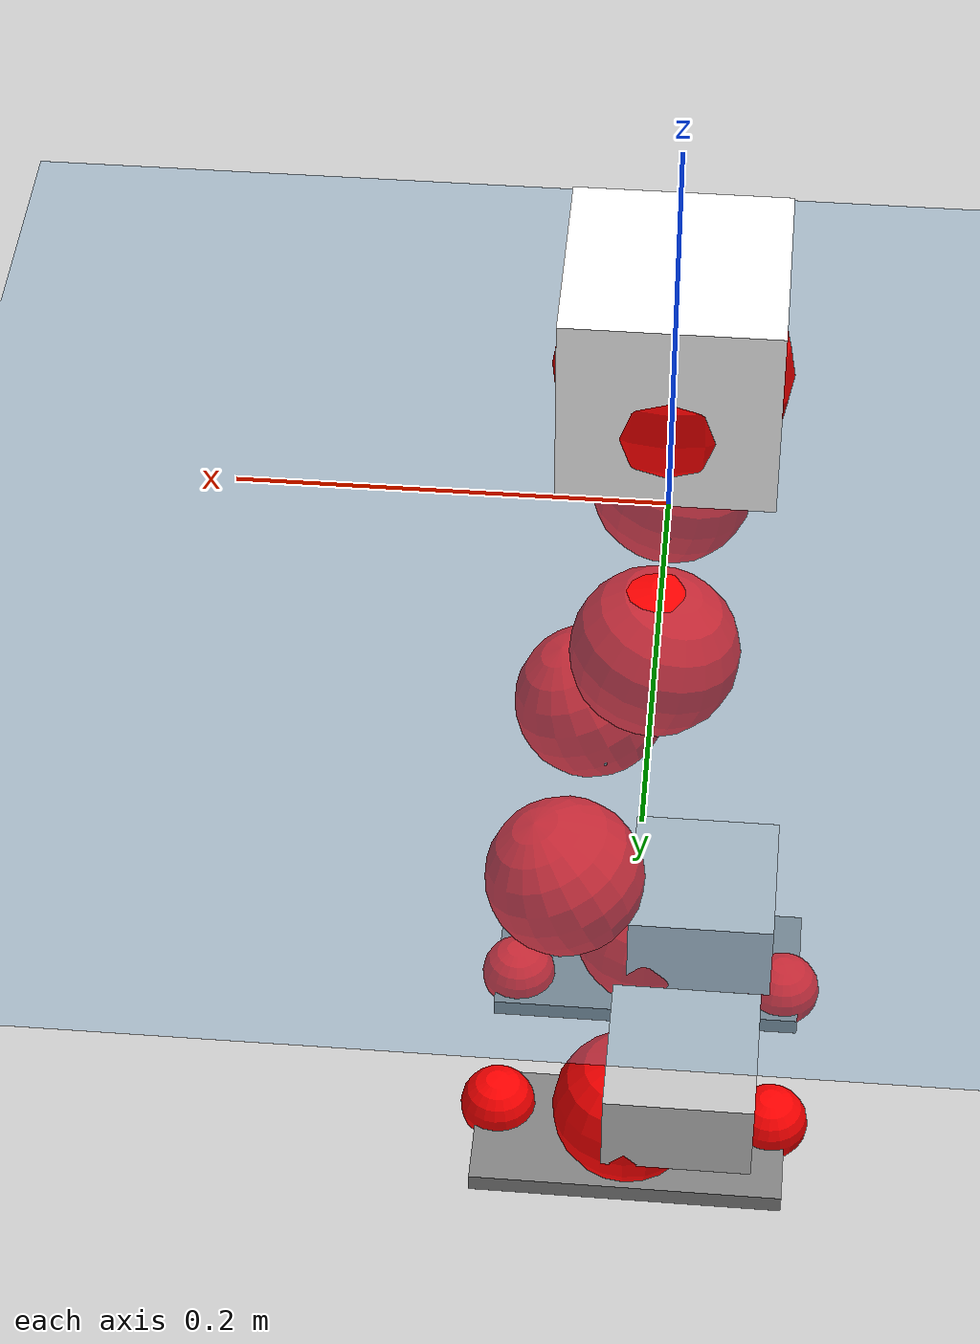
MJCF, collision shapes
<mujoco model="pi_12dof_release_v1">
  <compiler angle="radian" assetdir="assets" balanceinertia="true" inertiafromgeom="false"/>

  <option timestep="0.005" density="1.2" viscosity="2e-05"/>

  <size nkey="1"/>

  <visual>
    <quality shadowsize="8192"/>
    <map shadowclip="0.5"/>
  </visual>

  <default>
    <default class="/">
      <joint armature="0.01" damping="0.01" frictionloss="0.01"/>
      <geom contype="0" conaffinity="0" group="1" solref="-1000 -80"/>
      <site size="0.01 0.005 0.005" group="5"/>
      <general forcelimited="true" biastype="affine" gainprm="20" biasprm="0 -20 -0.5"/>
      <default class="foot">
        <geom size="0.0845 0.036 0.005" type="box" condim="6" group="4" priority="1" friction="0.9 0.2 0.2" solimp="0.015 1 0.005"/>
      </default>
      <default class="reward_collision_sphere">
        <geom group="5" rgba="1 0 0 1"/>
      </default>
    </default>
  </default>

  <asset>
    <texture type="skybox" colorspace="auto" name="//unnamed_texture_0" builtin="gradient" rgb1="0.95 0.95 0.95" rgb2="0.95 0.95 0.95" width="100" height="600"/>
    <texture type="2d" colorspace="auto" name="texplane" builtin="checker" rgb1="0.345 0.575 0.748" rgb2="0.345 0.575 0.748" markrgb="1 1 1" width="512" height="512"/>
    <material name="MatPlane" class="/" texture="texplane" texuniform="true" texrepeat="2 2" specular="0.9"/>
    <mesh name="baselink_1" class="/" file="baselink_1.STL"/>
    <mesh name="r_hip_pitch_link" class="/" file="r_hip_pitch_link.STL"/>
    <mesh name="r_hip_roll_link" class="/" file="r_hip_roll_link.STL"/>
    <mesh name="r_thigh_link" class="/" file="r_thigh_link.STL"/>
    <mesh name="r_calf_link" class="/" file="r_calf_link.STL"/>
    <mesh name="r_ankle_pitch_link" class="/" file="r_ankle_pitch_link.STL"/>
    <mesh name="r_ankle_roll_link" class="/" file="r_ankle_roll_link.STL"/>
    <mesh name="l_hip_pitch_link" class="/" file="l_hip_pitch_link.STL"/>
    <mesh name="l_hip_roll_link" class="/" file="l_hip_roll_link.STL"/>
    <mesh name="l_thigh_link" class="/" file="l_thigh_link.STL"/>
    <mesh name="l_calf_link" class="/" file="l_calf_link.STL"/>
    <mesh name="l_ankle_pitch_link" class="/" file="l_ankle_pitch_link.STL"/>
    <mesh name="l_ankle_roll_link" class="/" file="l_ankle_roll_link.STL"/>
  </asset>

  <worldbody>
    <geom name="floor" class="/" size="100 100 0.125" type="plane" group="0" material="MatPlane"/>
    <light name="toplight_shadow" class="/" pos="0 0 5" dir="0.0990148 0.0990148 -0.990148" type="directional" ambient="0.04 0.04 0.04" diffuse="0.55 0.55 0.55" specular="0.12 0.12 0.12"/>
    <light name="toplight_fill" class="/" pos="0 0 5" dir="0.0990148 0.0990148 -0.990148" type="directional" castshadow="false" ambient="0.04 0.04 0.04" diffuse="0.3 0.3 0.3" specular="0.08 0.08 0.08"/>
    <body name="trunk" pos="0.000196949 0.000369171 0.000592732" quat="1 -8.28373e-05 8.70808e-05 0.000123292">
      <inertial pos="0.00328008 -0.00231548 0.046487" quat="0.694889 0.00721903 0.00610387 0.719055" mass="2.00492" diaginertia="0.0124924 0.00188599 0.0082989"/>
      <joint name="//unnamed_joint_0" type="free"/>
      <geom name="//unnamed_geom_1" class="/" type="mesh" density="0" rgba="1 1 1 1" mesh="baselink_1"/>
      <geom name="//unnamed_geom_2" class="/" size="0.0490712 0.0490712 0.0490712" pos="0 0 0.0920999" type="box" rgba="1 1 1 1"/>
      <geom name="//unnamed_geom_3" class="reward_collision_sphere" size="0.0539783" pos="0 0 0.0805874"/>
      <site name="imu" class="/" pos="-0.00219537 -7.47677e-05 -0.000115081" size="0.00981424"/>
      <camera name="track" class="/" pos="0 -1.46821 0" quat="0.707107 0.707107 0 0" mode="trackcom"/>
      <camera name="ego_camera" class="/" pos="0.0794187 0 0.207225" quat="-0.5 -0.5 0.5 0.5"/>
      <body name="r_hip_pitch_link" pos="-0.000744217 -0.0167474 -0.0379153" quat="0.992191 -0.000255457 -0.124729 0.000101144">
        <inertial pos="0.00108831 -0.0421893 0.000468983" quat="-0.0274293 0.705056 -0.0341083 0.7078" mass="0.349006" diaginertia="0.000144632 2.12055e-05 0.00016863"/>
        <joint name="r_hip_pitch_joint" class="/" pos="0 0 0" axis="0.00852175 -0.999961 -0.00215872" range="-1.7585 1.23343" armature="0.00975295" damping="0.0200477" frictionloss="0.0104978"/>
        <geom name="//unnamed_geom_4" class="/" type="mesh" density="0" rgba="0.75294 0.75294 0.75294 1" mesh="r_hip_pitch_link"/>
        <geom name="//unnamed_geom_5" class="/" size="0.000490712 0.000490712 0.000490712" type="box" rgba="0.75294 0.75294 0.75294 1"/>
        <body name="r_hip_roll_link" pos="0.000578095 -0.0414514 -0.000619076" quat="1 -0.000426893 0.000199181 -0.000697092">
          <inertial pos="-0.000708377 0.00148003 -0.0697685" quat="0.709137 -0.079615 -0.0812763 0.69583" mass="0.363404" diaginertia="0.000439711 6.0574e-05 0.000260021"/>
          <joint name="r_hip_roll_joint" class="/" pos="0 0 0" axis="-0.999991 -0.00399777 -0.00134526" range="-0.122985 0.503018" armature="0.00996329" damping="0.0110028" frictionloss="0.00960636"/>
          <geom name="//unnamed_geom_6" class="/" type="mesh" density="0" rgba="0.75294 0.75294 0.75294 1" mesh="r_hip_roll_link"/>
          <geom name="//unnamed_geom_7" class="/" size="0.000490712 0.000490712 0.000490712" type="box" rgba="0.75294 0.75294 0.75294 1"/>
          <geom name="//unnamed_geom_8" class="reward_collision_sphere" size="0.039257"/>
          <body name="r_thigh_link" pos="-0.000352051 -0.00117261 -0.0788597" quat="1 0.000266489 6.84098e-05 -0.000193639">
            <inertial pos="-0.000518377 0.000918533 -0.0552274" quat="0.734513 0.678594 -0.00054819 -0.000102164" mass="0.10626" diaginertia="0.000167438 2.06593e-05 0.000117289"/>
            <joint name="r_thigh_joint" class="/" pos="0 0 0" axis="-0.00146719 0.000675102 -0.999999" range="-0.334315 0.559985" armature="0.0101263" damping="0" frictionloss="0.0105817"/>
            <geom name="//unnamed_geom_9" class="/" type="mesh" density="0" rgba="0.75294 0.75294 0.75294 1" mesh="r_thigh_link"/>
            <geom name="//unnamed_geom_10" class="/" size="0.000490712 0.000490712 0.000490712" type="box" rgba="0.75294 0.75294 0.75294 1"/>
            <body name="r_calf_link" pos="-0.00214524 -0.00124938 -0.0798979" quat="0.947657 3.29284e-05 0.319291 -7.7484e-06">
              <inertial pos="-0.000602413 -0.00181544 -0.0795248" quat="0.999942 -0.0049895 0.00379996 0.00880506" mass="0.775091" diaginertia="0.00468069 0.000746318 0.000348298"/>
              <joint name="r_calf_joint" class="/" pos="0 0 0" axis="0.0114777 -0.999933 -0.00132543" stiffness="0.00153211" range="-1.632 0.639349" armature="0.00994474" damping="0.013905" frictionloss="0.0104214"/>
              <geom name="//unnamed_geom_11" class="/" type="mesh" density="0" rgba="0.75294 0.75294 0.75294 1" mesh="r_calf_link"/>
              <geom name="//unnamed_geom_12" class="/" size="0.000490712 0.000490712 0.000490712" type="box" rgba="0.75294 0.75294 0.75294 1"/>
              <geom name="//unnamed_geom_13" class="reward_collision_sphere" size="0.039257"/>
              <body name="r_ankle_pitch_link" pos="0.00137121 9.74575e-05 -0.162646" quat="0.980066 -2.29367e-05 -0.198671 3.83414e-05">
                <inertial pos="0.00419443 0.00325104 0.00115314" quat="-0.00162129 0.706217 -0.00272723 0.707988" mass="0.165601" diaginertia="0.000412194 4.7373e-05 0.000242685"/>
                <joint name="r_ankle_pitch_joint" class="/" pos="0 0 0" axis="0.00120125 -0.999999 -0.000777662" range="-1.29176 0.474251" armature="0.0101333" damping="0.0116903" frictionloss="0.0103291"/>
                <geom name="//unnamed_geom_14" class="/" type="mesh" density="0" rgba="0.75294 0.75294 0.75294 1" mesh="r_ankle_pitch_link"/>
                <geom name="//unnamed_geom_15" class="/" size="0.0382755 0.039257 0.0245356" type="box" rgba="0.75294 0.75294 0.75294 1"/>
                <body name="r_ankle_roll_link" pos="0.0815522 0.0023883 0.00137637" quat="1 5.57385e-06 -2.4034e-06 -1.20104e-05">
                  <inertial pos="-0.0247284 -0.000364479 -0.0164365" quat="0.563216 0.428721 0.435314 0.556317" mass="0.501" diaginertia="0.0015584 0.000224392 0.000590643"/>
                  <joint name="r_ankle_roll_joint" class="/" pos="0 0 0" axis="-0.999956 0.00871226 0.00338454" range="-0.113605 0.160055" armature="0.00964756" damping="0.00511395" frictionloss="0.00950914"/>
                  <geom name="//unnamed_geom_16" class="/" type="mesh" density="0" rgba="0.75294 0.75294 0.75294 1" mesh="r_ankle_roll_link"/>
                  <geom name="//unnamed_geom_17" class="/" type="mesh" rgba="0.75294 0.75294 0.75294 1" mesh="r_ankle_roll_link"/>
                  <geom name="right_foot" class="foot" size="0.0815737 0.0372435 0.00481935" pos="-0.0540047 0 -0.050655"/>
                  <geom name="//unnamed_geom_19" class="reward_collision_sphere" size="0.039257" pos="-0.0529458 0 -0.023025"/>
                  <geom name="//unnamed_geom_20" class="reward_collision_sphere" size="0.0196285" pos="0.0158837 0.0146821 -0.04605"/>
                  <geom name="//unnamed_geom_21" class="reward_collision_sphere" size="0.0196285" pos="-0.12707 0.0146821 -0.04605"/>
                  <site name="right_foot" class="foot" pos="-0.0540047 0 -0.050655" size="0.00981424"/>
                </body>
              </body>
            </body>
          </body>
        </body>
      </body>
      <body name="l_hip_pitch_link" pos="0.00118244 0.0161167 -0.036786" quat="0.992199 3.32053e-05 -0.124662 -2.27057e-05">
        <inertial pos="0.00117268 0.0396904 -0.000822829" quat="-0.0384873 0.705516 0.0294925 0.707034" mass="0.363752" diaginertia="0.000172303 2.2938e-05 0.000203984"/>
        <joint name="l_hip_pitch_joint" class="/" pos="0 0 0" axis="0.00134794 0.999997 0.00213863" range="-1.23446 1.77046" armature="0.00978784" damping="0.0138552" frictionloss="0.00978095"/>
        <geom name="//unnamed_geom_22" class="/" type="mesh" density="0" rgba="0.75294 0.75294 0.75294 1" mesh="l_hip_pitch_link"/>
        <geom name="//unnamed_geom_23" class="/" size="0.000490712 0.000490712 0.000490712" type="box" rgba="0.75294 0.75294 0.75294 1"/>
        <body name="l_hip_roll_link" pos="0.000330787 0.0423221 -0.00116403" quat="1 -5.09107e-05 -0.000715014 -0.000162999">
          <inertial pos="-0.00135031 0.00191098 -0.0707892" quat="0.699268 -0.0756317 -0.0787931 0.706467" mass="0.359386" diaginertia="0.000448112 5.85677e-05 0.000263057"/>
          <joint name="l_hip_roll_joint" class="/" pos="0 0 0" axis="-0.999996 -0.00225153 -0.00183113" range="-0.494951 0.105593" armature="0.0106802" damping="0.00467293" frictionloss="0.0102179"/>
          <geom name="//unnamed_geom_24" class="/" type="mesh" density="0" rgba="0.75294 0.75294 0.75294 1" mesh="l_hip_roll_link"/>
          <geom name="//unnamed_geom_25" class="/" size="0.000490712 0.000490712 0.000490712" type="box" rgba="0.75294 0.75294 0.75294 1"/>
          <geom name="//unnamed_geom_26" class="reward_collision_sphere" size="0.039257"/>
          <body name="l_thigh_link" pos="0.00113171 -0.000607875 -0.0799103" quat="1 -0.000365375 0.000191996 9.89769e-05">
            <inertial pos="-1.15719e-06 -0.000964476 -0.05547" quat="0.67544 0.737415 0.000160193 0.00046977" mass="0.107891" diaginertia="0.000167534 2.0295e-05 0.000117373"/>
            <joint name="l_thigh_joint" class="/" pos="0 0 0" axis="-1.69896e-05 9.53837e-05 -1" range="-0.612646 0.29556" armature="0.0102462" damping="0" frictionloss="0.00947507"/>
            <geom name="//unnamed_geom_27" class="/" type="mesh" density="0" rgba="0.75294 0.75294 0.75294 1" mesh="l_thigh_link"/>
            <geom name="//unnamed_geom_28" class="/" size="0.000490712 0.000490712 0.000490712" type="box" rgba="0.75294 0.75294 0.75294 1"/>
            <body name="l_calf_link" pos="-0.00179449 0.000782054 -0.0817697" quat="0.947753 0.000549469 0.319003 -0.000795354">
              <inertial pos="0.000810955 0.0031891 -0.079967" quat="0.999984 0.00307378 -0.000122845 0.00473397" mass="0.778869" diaginertia="0.00474112 0.000749475 0.000366201"/>
              <joint name="l_calf_joint" class="/" pos="0 0 0" axis="0.00154962 0.999996 0.00228665" range="-0.634442 1.66588" armature="0.0103578" damping="0.00700179" frictionloss="0.00960781"/>
              <geom name="//unnamed_geom_29" class="/" type="mesh" density="0" rgba="0.75294 0.75294 0.75294 1" mesh="l_calf_link"/>
              <geom name="//unnamed_geom_30" class="/" size="0.000490712 0.000490712 0.000490712" type="box" rgba="0.75294 0.75294 0.75294 1"/>
              <geom name="//unnamed_geom_31" class="reward_collision_sphere" size="0.039257"/>
              <body name="l_ankle_pitch_link" pos="0.00068668 0.00143281 -0.16005" quat="0.980038 -6.74475e-05 -0.198808 -0.000432794">
                <inertial pos="0.00528694 -0.000843255 -0.000598381" quat="-0.00157659 0.705416 0.0023784 0.708788" mass="0.165159" diaginertia="0.000407035 4.75616e-05 0.000243554"/>
                <joint name="l_ankle_pitch_joint" class="/" pos="0 0 0" axis="-0.00172909 0.999998 -0.00055778" stiffness="0.00489648" range="-0.516739 1.30806" armature="0.00931222" damping="0.0110145" frictionloss="0.0101067"/>
                <geom name="//unnamed_geom_32" class="/" type="mesh" density="0" rgba="0.75294 0.75294 0.75294 1" mesh="l_ankle_pitch_link"/>
                <geom name="//unnamed_geom_33" class="/" size="0.0382755 0.039257 0.0245356" type="box" rgba="0.75294 0.75294 0.75294 1"/>
                <body name="l_ankle_roll_link" pos="0.0797117 0.0011415 -0.000753343" quat="1 5.41556e-05 -0.000108671 3.78727e-05">
                  <inertial pos="-0.0250516 -7.45347e-05 -0.0161674" quat="0.559684 0.431272 0.434096 0.558855" mass="0.487047" diaginertia="0.00149538 0.000216797 0.000568773"/>
                  <joint name="l_ankle_roll_joint" class="/" pos="0 0 0" axis="-1 -6.60156e-05 -0.000575234" range="-0.120042 0.154339" armature="0.00957121" damping="0" frictionloss="0.0102332"/>
                  <geom name="//unnamed_geom_34" class="/" type="mesh" density="0" rgba="0.75294 0.75294 0.75294 1" mesh="l_ankle_roll_link"/>
                  <geom name="//unnamed_geom_35" class="/" type="mesh" rgba="0.75294 0.75294 0.75294 1" mesh="l_ankle_roll_link"/>
                  <geom name="left_foot" class="foot" size="0.0807595 0.0356861 0.00504506" pos="-0.0540047 0 -0.050655"/>
                  <geom name="//unnamed_geom_37" class="reward_collision_sphere" size="0.039257" pos="-0.0529458 0 -0.023025"/>
                  <geom name="//unnamed_geom_38" class="reward_collision_sphere" size="0.0196285" pos="0.0158837 -0.0146821 -0.04605"/>
                  <geom name="//unnamed_geom_39" class="reward_collision_sphere" size="0.0196285" pos="-0.12707 -0.0146821 -0.04605"/>
                  <site name="left_foot" class="foot" pos="-0.0540047 0 -0.050655" size="0.00981424"/>
                </body>
              </body>
            </body>
          </body>
        </body>
      </body>
    </body>
  </worldbody>

  <contact>
    <pair class="/" geom1="floor" geom2="right_foot" name="//unnamed_contact_1"/>
    <pair class="/" geom1="floor" geom2="left_foot" name="//unnamed_contact_0"/>
  </contact>

  <actuator>
    <general name="r_hip_pitch_joint" class="/" joint="r_hip_pitch_joint" forcerange="-21.3662 21.3662" gainprm="20.1567" biasprm="0 -20.1567 -0.471849"/>
    <general name="r_hip_roll_joint" class="/" joint="r_hip_roll_joint" forcerange="-22.0435 22.0435" gainprm="20.1567" biasprm="0 -20.1567 -0.471849"/>
    <general name="r_thigh_joint" class="/" joint="r_thigh_joint" forcerange="-20.5736 20.5736" gainprm="20.1567" biasprm="0 -20.1567 -0.471849"/>
    <general name="r_calf_joint" class="/" joint="r_calf_joint" forcerange="-20.6721 20.6721" gainprm="20.1567" biasprm="0 -20.1567 -0.471849"/>
    <general name="r_ankle_pitch_joint" class="/" joint="r_ankle_pitch_joint" forcerange="-20.5121 20.5121" gainprm="20.1567" biasprm="0 -20.1567 -0.471849"/>
    <general name="r_ankle_roll_joint" class="/" joint="r_ankle_roll_joint" forcerange="-20.7126 20.7126" gainprm="20.1567" biasprm="0 -20.1567 -0.471849"/>
    <general name="l_hip_pitch_joint" class="/" joint="l_hip_pitch_joint" forcerange="-19.8492 19.8492" gainprm="20.1567" biasprm="0 -20.1567 -0.471849"/>
    <general name="l_hip_roll_joint" class="/" joint="l_hip_roll_joint" forcerange="-20.4622 20.4622" gainprm="20.1567" biasprm="0 -20.1567 -0.471849"/>
    <general name="l_thigh_joint" class="/" joint="l_thigh_joint" forcerange="-20.4591 20.4591" gainprm="20.1567" biasprm="0 -20.1567 -0.471849"/>
    <general name="l_calf_joint" class="/" joint="l_calf_joint" forcerange="-21.3306 21.3306" gainprm="20.1567" biasprm="0 -20.1567 -0.471849"/>
    <general name="l_ankle_pitch_joint" class="/" joint="l_ankle_pitch_joint" forcerange="-20.8148 20.8148" gainprm="20.1567" biasprm="0 -20.1567 -0.471849"/>
    <general name="l_ankle_roll_joint" class="/" joint="l_ankle_roll_joint" forcerange="-20.5839 20.5839" gainprm="20.1567" biasprm="0 -20.1567 -0.471849"/>
  </actuator>

  <sensor>
    <gyro site="imu" name="imu_angular_velocity"/>
    <velocimeter site="imu" name="imu_linear_velocity"/>
    <framelinvel objtype="site" objname="left_foot" name="left_foot_global_linear_velocity"/>
    <framelinvel objtype="site" objname="right_foot" name="right_foot_global_linear_velocity"/>
  </sensor>

  <keyframe>
    <key name="home" qpos="0 0 0.291 1 0 0 0 0.4 0 0 -0.8 0.4 0 -0.4 0 0 0.8 -0.4 0"/>
  </keyframe>
</mujoco>
